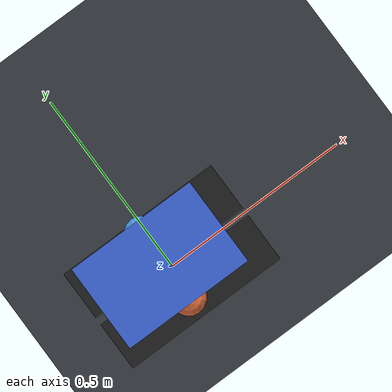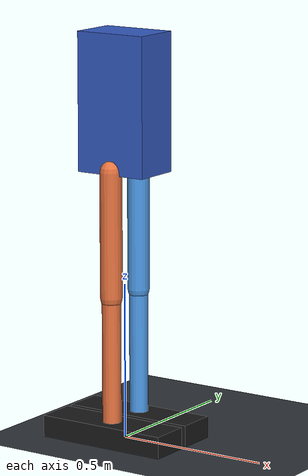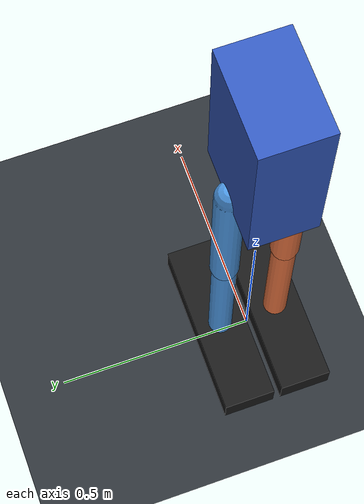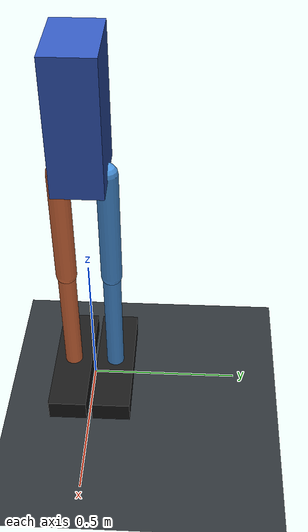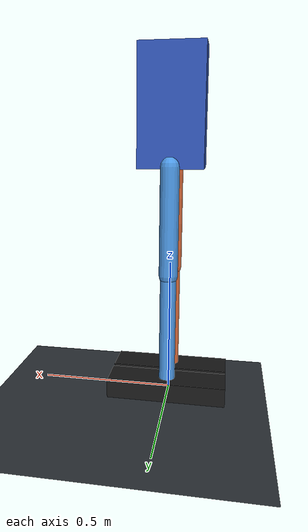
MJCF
<mujoco model="planar_biped_push_recovery">
  <compiler angle="radian" coordinate="local" autolimits="true"/>
  <option timestep="0.002" integrator="implicitfast" gravity="0 0 -9.81" iterations="80" tolerance="1e-9"/>

  <visual>
    <global offwidth="1280" offheight="720"/>
  </visual>

  <default>
    <geom condim="3" friction="1.0 0.02 0.002" solref="0.015 1.0" solimp="0.9 0.95 0.001"/>
    <joint damping="1.2" armature="0.03" limited="true"/>
  </default>

  <worldbody>
    <light name="key" pos="0 -4 4" dir="0 1 -1"/>
    <geom name="floor" type="plane" size="4 1.5 0.05" rgba="0.18 0.2 0.22 1" friction="1.0 0.02 0.002"/>

    <body name="torso" pos="0 0 1.08">
      <joint name="root_x" type="slide" axis="1 0 0" limited="false" damping="0"/>
      <joint name="root_z" type="slide" axis="0 0 1" limited="false" damping="0"/>
      <joint name="root_pitch" type="hinge" axis="0 1 0" limited="false" damping="0.2" armature="0.04"/>
      <geom name="torso_geom" type="box" size="0.12 0.08 0.22" mass="5.0" rgba="0.2 0.35 0.75 1"/>
      <site name="imu" pos="0 0 0.18" size="0.015" rgba="1 1 0 1"/>

      <body name="left_thigh" pos="0 0.075 -0.21">
        <joint name="left_hip" type="hinge" axis="0 1 0" range="-0.75 0.75"/>
        <geom name="left_thigh_geom" type="capsule" fromto="0 0 0 0 0 -0.40" size="0.035" mass="1.0" rgba="0.3 0.6 0.9 1"/>
        <body name="left_shin" pos="0 0 -0.40">
          <joint name="left_knee" type="hinge" axis="0 1 0" range="-1.0 0.35"/>
          <geom name="left_shin_geom" type="capsule" fromto="0 0 0 0 0 -0.40" size="0.03" mass="0.85" rgba="0.3 0.6 0.9 1"/>
          <body name="left_foot" pos="0 0 -0.40">
            <joint name="left_ankle" type="hinge" axis="0 1 0" range="-0.55 0.55"/>
            <geom name="left_foot_geom" type="box" pos="0 0 -0.035" size="0.22 0.065 0.035" mass="0.55" rgba="0.1 0.1 0.1 1"/>
            <site name="left_foot_site" pos="0 0 -0.07" size="0.015" rgba="0 1 0 1"/>
          </body>
        </body>
      </body>

      <body name="right_thigh" pos="0 -0.075 -0.21">
        <joint name="right_hip" type="hinge" axis="0 1 0" range="-0.75 0.75"/>
        <geom name="right_thigh_geom" type="capsule" fromto="0 0 0 0 0 -0.40" size="0.035" mass="1.0" rgba="0.9 0.45 0.25 1"/>
        <body name="right_shin" pos="0 0 -0.40">
          <joint name="right_knee" type="hinge" axis="0 1 0" range="-1.0 0.35"/>
          <geom name="right_shin_geom" type="capsule" fromto="0 0 0 0 0 -0.40" size="0.03" mass="0.85" rgba="0.9 0.45 0.25 1"/>
          <body name="right_foot" pos="0 0 -0.40">
            <joint name="right_ankle" type="hinge" axis="0 1 0" range="-0.55 0.55"/>
            <geom name="right_foot_geom" type="box" pos="0 0 -0.035" size="0.22 0.065 0.035" mass="0.55" rgba="0.1 0.1 0.1 1"/>
            <site name="right_foot_site" pos="0 0 -0.07" size="0.015" rgba="0 1 0 1"/>
          </body>
        </body>
      </body>
    </body>
  </worldbody>

  <actuator>
    <position name="left_hip_motor" joint="left_hip" kp="80" ctrlrange="-0.5 0.5"/>
    <position name="left_knee_motor" joint="left_knee" kp="70" ctrlrange="-0.7 0.2"/>
    <position name="left_ankle_motor" joint="left_ankle" kp="70" ctrlrange="-0.4 0.4"/>
    <position name="right_hip_motor" joint="right_hip" kp="80" ctrlrange="-0.5 0.5"/>
    <position name="right_knee_motor" joint="right_knee" kp="70" ctrlrange="-0.7 0.2"/>
    <position name="right_ankle_motor" joint="right_ankle" kp="70" ctrlrange="-0.4 0.4"/>
  </actuator>

  <sensor>
    <framepos name="torso_pos" objtype="body" objname="torso"/>
    <framequat name="torso_quat" objtype="body" objname="torso"/>
    <gyro name="torso_gyro" site="imu"/>
    <accelerometer name="torso_accel" site="imu"/>
    <jointpos name="root_pitch_pos" joint="root_pitch"/>
    <jointvel name="root_pitch_vel" joint="root_pitch"/>
    <jointpos name="left_hip_pos" joint="left_hip"/>
    <jointvel name="left_hip_vel" joint="left_hip"/>
    <jointpos name="left_knee_pos" joint="left_knee"/>
    <jointvel name="left_knee_vel" joint="left_knee"/>
    <jointpos name="left_ankle_pos" joint="left_ankle"/>
    <jointvel name="left_ankle_vel" joint="left_ankle"/>
    <jointpos name="right_hip_pos" joint="right_hip"/>
    <jointvel name="right_hip_vel" joint="right_hip"/>
    <jointpos name="right_knee_pos" joint="right_knee"/>
    <jointvel name="right_knee_vel" joint="right_knee"/>
    <jointpos name="right_ankle_pos" joint="right_ankle"/>
    <jointvel name="right_ankle_vel" joint="right_ankle"/>
  </sensor>
</mujoco>
